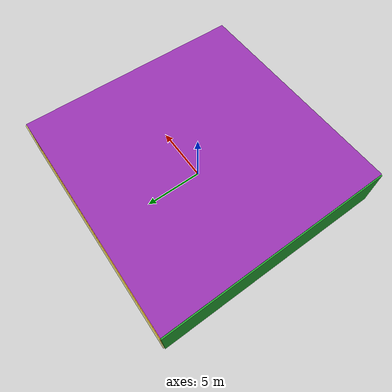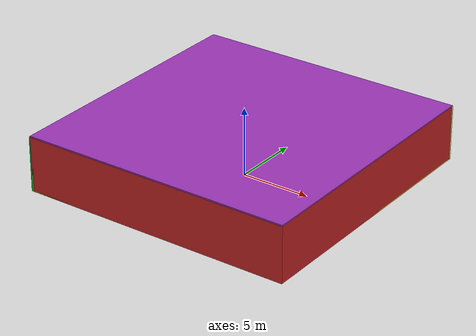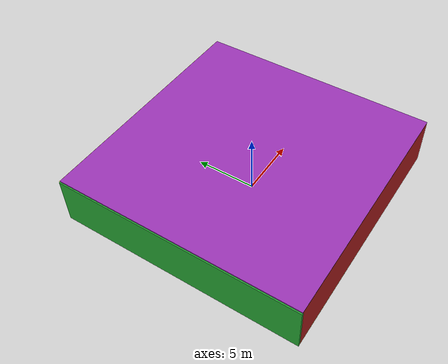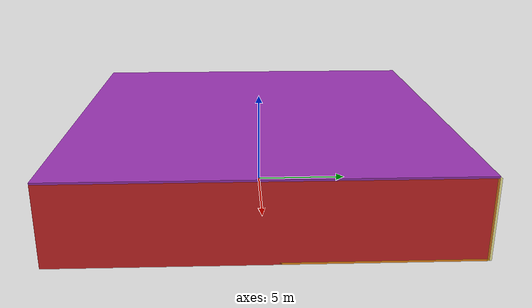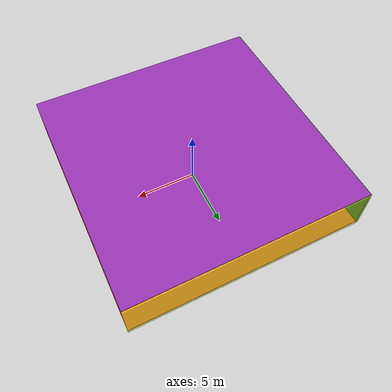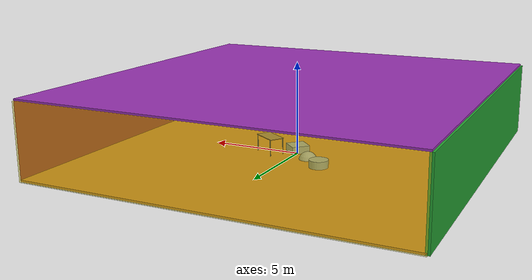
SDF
<sdf version="1.4">
 <world name="default">
  <physics type="ode">
   <max_step_size>0.001</max_step_size>
   <real_time_factor>1</real_time_factor>
   <real_time_update_rate>1000</real_time_update_rate>
   <gravity>0 0 -9.8</gravity>
  </physics>
  <scene><ambient>0.4 0.4 0.4 1</ambient><background>0.7 0.7 0.7 1</background><shadows>1</shadows></scene>
  <model name="Surrounding">
   <static>1</static>
   <link name="Ceiling">
    <collision name="Ceiling_Collision"><geometry><box><size>20 20 0.1</size></box></geometry></collision>
    <visual name="Ceiling_Visual">
     <geometry><box><size>20 20 0.1</size></box></geometry>
     <material>
      <script><uri>file://media/materials/scripts/gazebo.material</uri><name>Gazebo/PurpleGlow</name></script>
     </material>
    </visual>
    <pose>0 0 4.05 0 0 0</pose>
   </link>
   <link name="Wall_South">
    <collision name="Wall_South_Collision">
     <geometry><box><size>20 0 4</size></box></geometry>
     <pose>0 0 2 0 -0 0</pose>
    </collision>
    <visual name="Wall_South_Visual">
     <pose>0 0 2 0 -0 0</pose>
     <geometry><box><size>20 0 4</size></box></geometry>
     <material>
      <script><uri>file://media/materials/scripts/gazebo.material</uri><name>Gazebo/RedGlow</name></script>
     </material>
    </visual>
    <velocity_decay><linear>0</linear><angular>0</angular></velocity_decay>
    <pose>0 -10 0 0 -0 0</pose>
   </link>
   <link name="Wall_East">
    <collision name="Wall_21_Collision">
     <geometry><box><size>20 0 4</size></box></geometry>
     <pose>0 0 2 0 -0 0</pose>
    </collision>
    <visual name="Wall_21_Visual">
     <pose>0 0 2 0 -0 0</pose>
     <geometry><box><size>20 0 4</size></box></geometry>
     <material>
      <script><uri>file://media/materials/scripts/gazebo.material</uri><name>Gazebo/RedGlow</name></script>
     </material>
    </visual>
    <velocity_decay><linear>0</linear><angular>0</angular></velocity_decay>
    <pose>10 0 0 0 -0 1.5708</pose>
   </link>
   <link name="Wall_North">
    <collision name="Wall_22_Collision">
     <geometry><box><size>20 0.2 4</size></box></geometry>
     <pose>0 0 2 0 -0 0</pose>
    </collision>
    <visual name="Wall_22_Visual">
     <pose>0 0 2 0 -0 0</pose>
     <geometry><box><size>20 0.2 4</size></box></geometry>
     <material>
      <script>
       <uri>file://media/materials/scripts/gazebo.material</uri>
       <name>Gazebo/YellowTransparent</name>
      </script>
     </material>
    </visual>
    <velocity_decay><linear>0</linear><angular>0</angular></velocity_decay>
    <pose>0 10 0 0 -0 0</pose>
   </link>
   <link name="Wall_West">
    <collision name="Wall_23_Collision">
     <geometry><box><size>20 0.2 4</size></box></geometry>
     <pose>0 0 2 0 -0 0</pose>
    </collision>
    <visual name="Wall_23_Visual">
     <pose>0 0 2 0 -0 0</pose>
     <geometry><box><size>20 0.2 4</size></box></geometry>
     <material>
      <script><uri>file://media/materials/scripts/gazebo.material</uri><name>Gazebo/GreenGlow</name></script>
     </material>
    </visual>
    <velocity_decay><linear>0</linear><angular>0</angular></velocity_decay>
    <pose>-10 0 0 0 0 -1.5708</pose>
   </link>
   <link name="Ground_link">
    <collision name="collision">
     <pose>0 0 .05 0 -0 0</pose>
     <geometry><box><size>20 20 0.1</size></box></geometry>
    </collision>
    <visual name="visual">
     <pose>0 0 .05 0 -0 0</pose>
     <geometry><box><size>20 20 0.1</size></box></geometry>
     <material>
      <script><uri>file://media/materials/scripts/gazebo.material</uri><name>Gazebo/Orange</name></script>
     </material>
    </visual>
   </link>
   <static>1</static>
  </model>
  <spherical_coordinates>
   <surface_model>EARTH_WGS84</surface_model>
   <latitude_deg>0</latitude_deg>
   <longitude_deg>0</longitude_deg>
   <elevation>0</elevation>
   <heading_deg>0</heading_deg>
  </spherical_coordinates>
  <light name="lightball_0" type="diffuse">
   <diffuse>0.8 0.8 0.8 1</diffuse>
   <specular>0.2 0.2 0.2 1</specular>
   <attenuation>
    <range>100</range>
    <constant>0.7</constant>
    <linear>0.01</linear>
    <quadratic>0.001</quadratic>
   </attenuation>
   <direction>-0.5 0.1 -0.9</direction>
   <pose>-5.87177007992 -2.84086639488 2.97310562732 0 0 0</pose>
  </light>
  <light name="lightball_1" type="diffuse">
   <diffuse>0.8 0.8 0.8 1</diffuse>
   <specular>0.2 0.2 0.2 1</specular>
   <attenuation>
    <range>100</range>
    <constant>0.7</constant>
    <linear>0.01</linear>
    <quadratic>0.001</quadratic>
   </attenuation>
   <direction>-0.5 0.1 -0.9</direction>
   <pose>-6.81735506493 -1.07278443408 3.85431076343 0 0 0</pose>
  </light>
  <light name="lightball_2" type="diffuse">
   <diffuse>0.8 0.8 0.8 1</diffuse>
   <specular>0.2 0.2 0.2 1</specular>
   <attenuation>
    <range>100</range>
    <constant>0.7</constant>
    <linear>0.01</linear>
    <quadratic>0.001</quadratic>
   </attenuation>
   <direction>-0.5 0.1 -0.9</direction>
   <pose>0.00881187465673 -5.12417150671 1.35660332877 0 0 0</pose>
  </light>
  <light name="lightball_3" type="diffuse">
   <diffuse>0.8 0.8 0.8 1</diffuse>
   <specular>0.2 0.2 0.2 1</specular>
   <attenuation>
    <range>100</range>
    <constant>0.7</constant>
    <linear>0.01</linear>
    <quadratic>0.001</quadratic>
   </attenuation>
   <direction>-0.5 0.1 -0.9</direction>
   <pose>3.9809572622 -7.18821234104 2.05744683563 0 0 0</pose>
  </light>
  <light name="lightball_4" type="diffuse">
   <diffuse>0.8 0.8 0.8 1</diffuse>
   <specular>0.2 0.2 0.2 1</specular>
   <attenuation>
    <range>100</range>
    <constant>0.7</constant>
    <linear>0.01</linear>
    <quadratic>0.001</quadratic>
   </attenuation>
   <direction>-0.5 0.1 -0.9</direction>
   <pose>7.50119778521 -2.31096884489 1.5040959252 0 0 0</pose>
  </light>
  <light name="lightball_5" type="diffuse">
   <diffuse>0.8 0.8 0.8 1</diffuse>
   <specular>0.2 0.2 0.2 1</specular>
   <attenuation>
    <range>100</range>
    <constant>0.7</constant>
    <linear>0.01</linear>
    <quadratic>0.001</quadratic>
   </attenuation>
   <direction>-0.5 0.1 -0.9</direction>
   <pose>-9.17613656501 -9.02770746825 1.50052295214 0 0 0</pose>
  </light>
  <light name="lightball_6" type="diffuse">
   <diffuse>0.8 0.8 0.8 1</diffuse>
   <specular>0.2 0.2 0.2 1</specular>
   <attenuation>
    <range>100</range>
    <constant>0.7</constant>
    <linear>0.01</linear>
    <quadratic>0.001</quadratic>
   </attenuation>
   <direction>-0.5 0.1 -0.9</direction>
   <pose>-9.77422175007 -4.0693235626 2.83029970414 0 0 0</pose>
  </light>
  <light name="lightball_7" type="diffuse">
   <diffuse>0.8 0.8 0.8 1</diffuse>
   <specular>0.2 0.2 0.2 1</specular>
   <attenuation>
    <range>100</range>
    <constant>0.7</constant>
    <linear>0.01</linear>
    <quadratic>0.001</quadratic>
   </attenuation>
   <direction>-0.5 0.1 -0.9</direction>
   <pose>-2.59253024447 -2.04486774972 2.9486797556 0 0 0</pose>
  </light>
  <include><uri>model://cabinet</uri><pose>-7.85836764444 -1.0226929695 0 0 0 3.01049260608</pose></include>
  <include>
   <uri>model://textured_shapes</uri>
   <pose>-1.08765192522 1.0163145014 0 0 0 0.794206644068</pose>
  </include>
  <include><uri>model://table</uri><pose>1.27225306288 0.736595917433 0 0 0 2.56485889956</pose></include>
  <include>
   <uri>model://construction_cone</uri>
   <pose>7.70821961315 -3.95361296144 0 0 0 0.429984510998</pose>
  </include>
 </world>
</sdf>

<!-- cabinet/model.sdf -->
<sdf version="1.5">
  <model name="cabinet">
    <static>true</static>
    <link name="cabinet_bottom_plate">
      <inertial>
        <pose>0 0 -1 0 0 0</pose>
        <inertia>
          <ixx>2.050000</ixx>
          <ixy>0</ixy>
          <ixz>0</ixz>
          <iyy>2.050000</iyy>
          <iyz>0</iyz>
          <izz>2.050000</izz>
        </inertia>
        <mass>25.000000</mass>
      </inertial>
      <collision name="cabinet_bottom_plate_geom">
        <pose>0 0 0.010000 0 0 0</pose>
        <geometry>
          <box>
            <size>0.450000 0.450000 0.020000</size>
          </box>
        </geometry>
      </collision>
      <visual name="cabinet_bottom_plate_geom_visual">
        <pose>0 0 0.010000 0 0 0</pose>
        <geometry>
          <box>
            <size>0.450000 0.450000 0.020000</size>
          </box>
        </geometry>
        <material>
          <script>
            <uri>model://media/materials/scripts/gazebo.material</uri>
            <name>Gazebo/Wood</name>
          </script>
        </material>
      </visual>
      <collision name="cabinet_bottom_plate_geom_cabinet_back_plate">
        <pose>0.235000 0 0.510000 0 0 0</pose>
        <geometry>
          <box>
            <size>0.020000 0.450000 1.020000</size>
          </box>
        </geometry>
      </collision>
      <visual name="cabinet_bottom_plate_geom_cabinet_back_plate_visual">
        <pose>0.235000 0 0.510000 0 0 0</pose>
        <geometry>
          <box>
            <size>0.020000 0.450000 1.020000</size>
          </box>
        </geometry>
        <material>
          <script>
            <uri>model://media/materials/scripts/gazebo.material</uri>
            <name>Gazebo/Wood</name>
          </script>
        </material>
      </visual>
      <collision name="cabinet_bottom_plate_geom_cabinet_left_plate">
        <pose>0 0.235000 0.510000 0 0 0</pose>
        <geometry>
          <box>
            <size>0.450000 0.020000 1.020000</size>
          </box>
        </geometry>
      </collision>
      <visual name="cabinet_bottom_plate_geom_cabinet_left_plate_visual">
        <pose>0 0.235000 0.510000 0 0 0</pose>
        <geometry>
          <box>
            <size>0.450000 0.020000 1.020000</size>
          </box>
        </geometry>
        <material>
          <script>
            <uri>model://media/materials/scripts/gazebo.material</uri>
            <name>Gazebo/Wood</name>
          </script>
        </material>
      </visual>
      <collision name="cabinet_bottom_plate_geom_cabinet_middle_plate">
        <pose>0 0 0.510000 0 0 0</pose>
        <geometry>
          <box>
            <size>0.450000 0.450000 0.020000</size>
          </box>
        </geometry>
      </collision>
      <visual name="cabinet_bottom_plate_geom_cabinet_middle_plate_visual">
        <pose>0 0 0.510000 0 0 0</pose>
        <geometry>
          <box>
            <size>0.450000 0.450000 0.020000</size>
          </box>
        </geometry>
        <material>
          <script>
            <uri>model://media/materials/scripts/gazebo.material</uri>
            <name>Gazebo/Wood</name>
          </script>
        </material>
      </visual>
      <collision name="cabinet_bottom_plate_geom_cabinet_right_plate">
        <pose>0 -0.235000 0.510000 0 0 0</pose>
        <geometry>
          <box>
            <size>0.450000 0.020000 1.020000</size>
          </box>
        </geometry>
      </collision>
      <visual name="cabinet_bottom_plate_geom_cabinet_right_plate_visual">
        <pose>0 -0.235000 0.510000 0 0 0</pose>
        <geometry>
          <box>
            <size>0.450000 0.020000 1.020000</size>
          </box>
        </geometry>
        <material>
          <script>
            <uri>model://media/materials/scripts/gazebo.material</uri>
            <name>Gazebo/Wood</name>
          </script>
        </material>
      </visual>
      <collision name="cabinet_bottom_plate_geom_cabinet_top_plate">
        <pose>0 0 1.010000 0 0 0</pose>
        <geometry>
          <box>
            <size>0.450000 0.450000 0.020000</size>
          </box>
        </geometry>
      </collision>
      <visual name="cabinet_bottom_plate_geom_cabinet_top_plate_visual">
        <pose>0 0 1.010000 0 0 0</pose>
        <geometry>
          <box>
            <size>0.450000 0.450000 0.020000</size>
          </box>
        </geometry>
        <material>
          <script>
            <uri>model://media/materials/scripts/gazebo.material</uri>
            <name>Gazebo/Wood</name>
          </script>
        </material>
      </visual>
    </link>
  </model>
</sdf>

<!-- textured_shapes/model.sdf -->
<sdf version="1.6">
  <model name="textured_shapes">
    <pose>0 0 0.5 0 0 0</pose>
    <link name="box">
      <pose>0 -1.5 0 0 0 0</pose>
      <collision name="collision">
        <geometry>
          <box>
            <size>1 1 1</size>
          </box>
        </geometry>
      </collision>
      <visual name="visual">
        <geometry>
          <box>
            <size>1 1 1</size>
          </box>
        </geometry>
        <material>
          <script>
            <uri>model://../model_source/models/textured_shapes/materials/scripts</uri>
            <uri>model://../model_source/models/textured_shapes/materials/textures</uri>
            <name>TexturedShape/Squares</name>
          </script>
        </material>
      </visual>
    </link>
    <link name="sphere">
      <collision name="collision">
        <geometry>
          <sphere>
            <radius>0.5</radius>
          </sphere>
        </geometry>
      </collision>
      <visual name="visual">
        <geometry>
          <sphere>
            <radius>0.5</radius>
          </sphere>
        </geometry>
        <material>
          <script>
            <uri>model://../model_source/models/textured_shapes/materials/scripts</uri>
            <uri>model://../model_source/models/textured_shapes/materials/textures</uri>
            <name>TexturedShape/Squares</name>
          </script>
        </material>
      </visual>
    </link>
    <link name="cylinder">
      <pose>0 1.5 0 0 0 0</pose>
      <collision name="collision">
        <geometry>
          <cylinder>
            <radius>0.5</radius>
            <length>1</length>
          </cylinder>
        </geometry>
      </collision>
      <visual name="visual">
        <geometry>
          <cylinder>
            <radius>0.5</radius>
            <length>1</length>
          </cylinder>
        </geometry>
        <material>
          <script>
            <uri>model://../model_source/models/textured_shapes/materials/scripts</uri>
            <uri>model://../model_source/models/textured_shapes/materials/textures</uri>
            <name>TexturedShape/Squares</name>
          </script>
        </material>
      </visual>
    </link>
  </model>
</sdf>

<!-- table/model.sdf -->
<sdf version="1.5">
  <model name="table">
    <static>true</static>
    <link name="link">
      <collision name="surface">
        <pose>0 0 1.0 0 0 0</pose>
        <geometry>
          <box>
            <size>1.5 0.8 0.03</size>
          </box>
        </geometry>
        <surface>
          <friction>
            <ode>
              <mu>0.6</mu>
              <mu2>0.6</mu2>
            </ode>
          </friction>
        </surface>
      </collision>
      <visual name="visual1">
        <pose>0 0 1.0 0 0 0</pose>
        <geometry>
          <box>
            <size>1.5 0.8 0.03</size>
          </box>
        </geometry>
        <material>
          <script>
            <uri>model://media/materials/scripts/gazebo.material</uri>
            <name>Gazebo/Wood</name>
          </script>
        </material>
      </visual>
      <collision name="front_left_leg">
        <pose>0.68 0.38 0.5 0 0 0</pose>
        <geometry>
          <cylinder>
            <radius>0.02</radius>
            <length>1.0</length>
          </cylinder>
        </geometry>
      </collision>
      <visual name="front_left_leg">
        <pose>0.68 0.38 0.5 0 0 0</pose>
        <geometry>
          <cylinder>
            <radius>0.02</radius>
            <length>1.0</length>
          </cylinder>
        </geometry>
        <material>
          <script>
            <uri>model://media/materials/scripts/gazebo.material</uri>
            <name>Gazebo/Grey</name>
          </script>
        </material>
      </visual>
      <collision name="front_right_leg">
        <pose>0.68 -0.38 0.5 0 0 0</pose>
        <geometry>
          <cylinder>
            <radius>0.02</radius>
            <length>1.0</length>
          </cylinder>
        </geometry>
      </collision>
      <visual name="front_right_leg">
        <pose>0.68 -0.38 0.5 0 0 0</pose>
        <geometry>
          <cylinder>
            <radius>0.02</radius>
            <length>1.0</length>
          </cylinder>
        </geometry>
        <material>
          <script>
            <uri>model://media/materials/scripts/gazebo.material</uri>
            <name>Gazebo/Grey</name>
          </script>
        </material>
      </visual>
      <collision name="back_right_leg">
        <pose>-0.68 -0.38 0.5 0 0 0</pose>
        <geometry>
          <cylinder>
            <radius>0.02</radius>
            <length>1.0</length>
          </cylinder>
        </geometry>
      </collision>
      <visual name="back_right_leg">
        <pose>-0.68 -0.38 0.5 0 0 0</pose>
        <geometry>
          <cylinder>
            <radius>0.02</radius>
            <length>1.0</length>
          </cylinder>
        </geometry>
        <material>
          <script>
            <uri>model://media/materials/scripts/gazebo.material</uri>
            <name>Gazebo/Grey</name>
          </script>
        </material>
      </visual>
      <collision name="back_left_leg">
        <pose>-0.68 0.38 0.5 0 0 0</pose>
        <geometry>
          <cylinder>
            <radius>0.02</radius>
            <length>1.0</length>
          </cylinder>
        </geometry>
      </collision>
      <visual name="back_left_leg">
        <pose>-0.68 0.38 0.5 0 0 0</pose>
        <geometry>
          <cylinder>
            <radius>0.02</radius>
            <length>1.0</length>
          </cylinder>
        </geometry>
        <material>
          <script>
            <uri>model://media/materials/scripts/gazebo.material</uri>
            <name>Gazebo/Grey</name>
          </script>
        </material>
      </visual>
    </link>
  </model>
</sdf>

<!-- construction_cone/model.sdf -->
<sdf version="1.5">
  <model name="Construction Cone">
    <link name="link">
      <collision name="collision">
        <geometry>
          <mesh>
            <scale>10 10 10</scale>
            <uri>file://isr-testbed/construction_cone/meshes/construction_cone.dae</uri>
          </mesh>
        </geometry>
      </collision>
      <visual name="visual">
        <geometry>
          <mesh>
            <scale>10 10 10</scale>
            <uri>file://isr-testbed/construction_cone/meshes/construction_cone.dae</uri>
          </mesh>
        </geometry>
      </visual>
    </link>
  </model>
</sdf>
